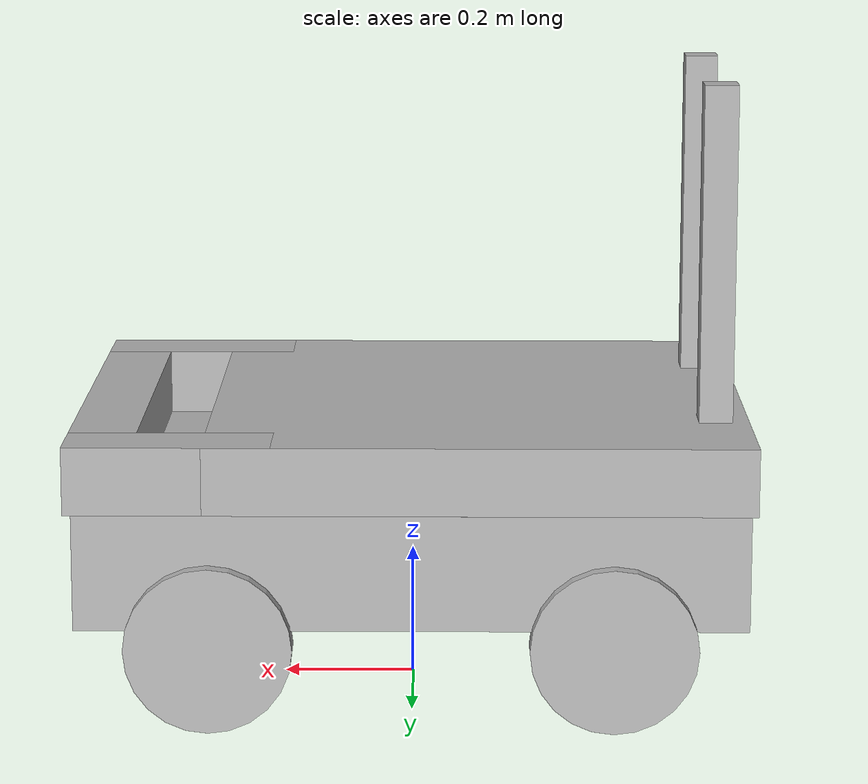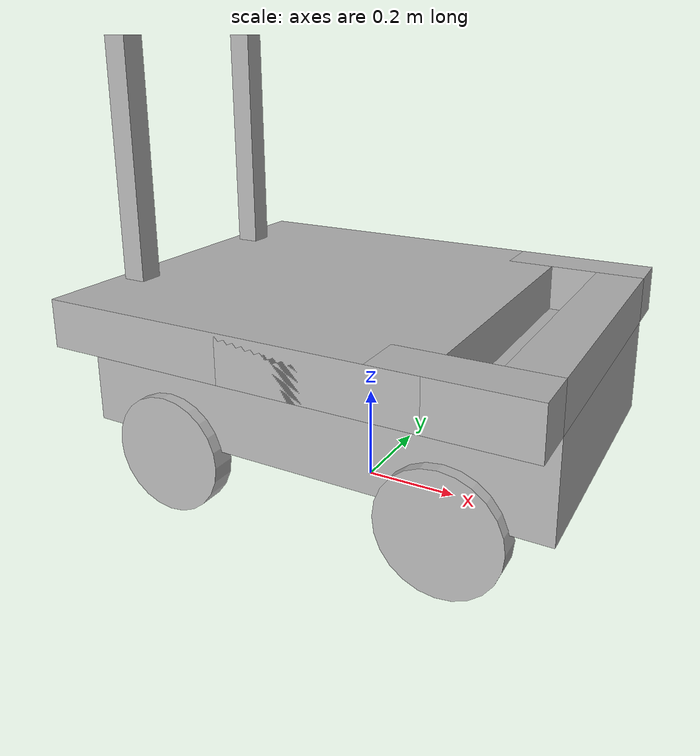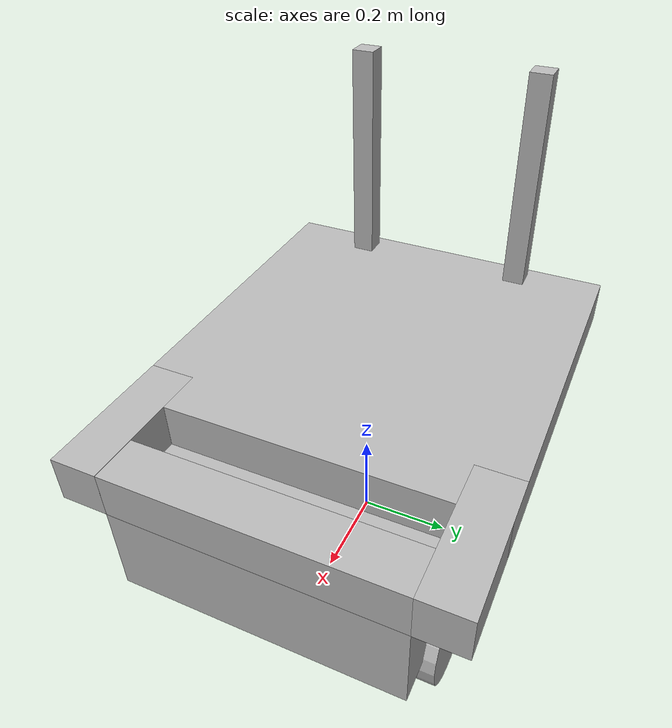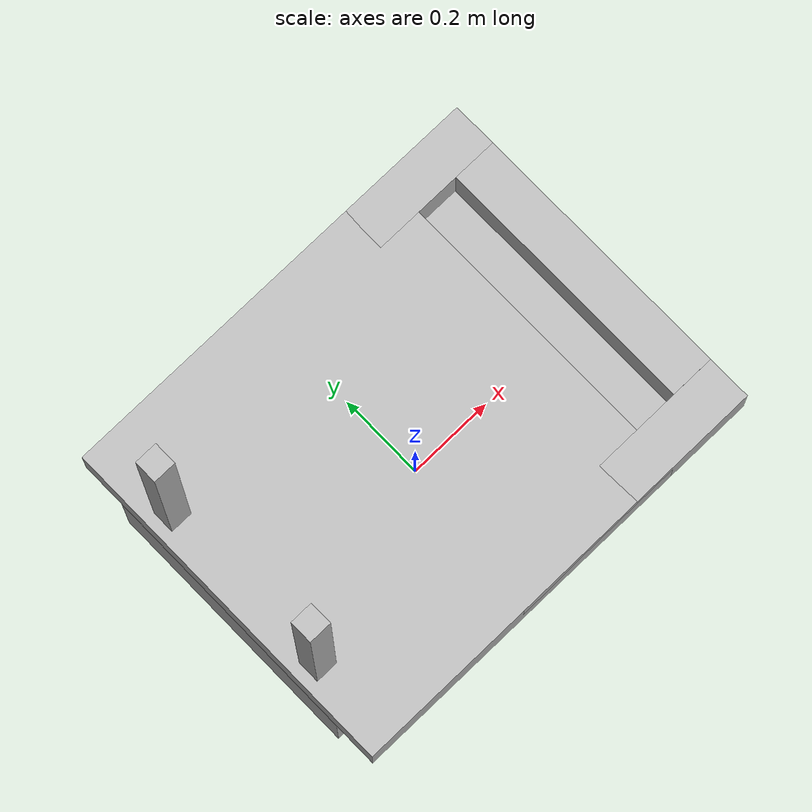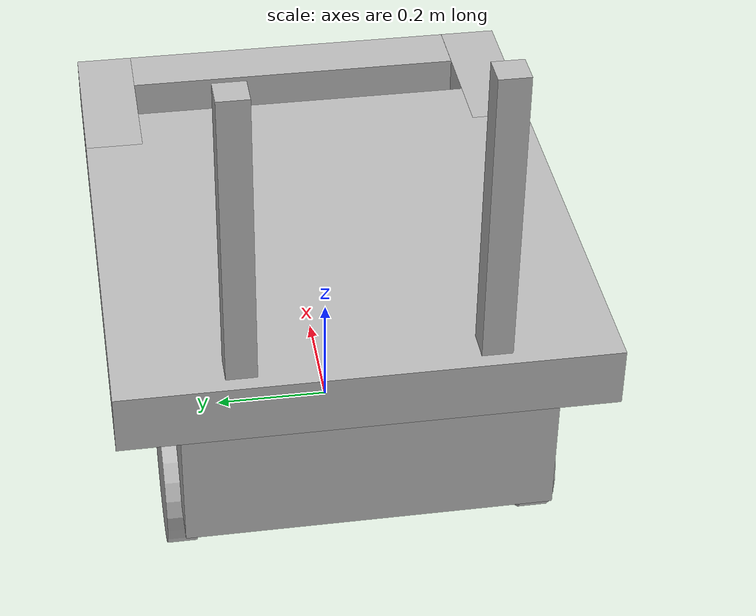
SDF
<?xml version="1.0"?>
<sdf version="1.4">
  <model name="body_lifter_alpha">
    <include>
      <uri>model://four_wheeled_car</uri>
      <pose>0 0 0 0 0 0</pose>
    </include>

    <include>
      <uri>model://lifter</uri>
      <pose>-0.1 0 0.35 0 0 3.1414</pose>
    </include>

    <joint name="lifter_joint_a" type="revolute">
      <pose>0 0.3 0.25 0 0 0</pose>
      <child>lifter::holder_a</child>
      <parent>four_wheeled_car::holder</parent>
      <axis>
        <limit>
          <lower>0</lower>
          <upper>1.5707</upper>
        </limit>
        <xyz>0 1 0</xyz>
      </axis>
    </joint>

    <joint name="lifter_joint_b" type="revolute">
      <pose>0 -0.3 0.25 0 0 0</pose>
      <child>lifter::holder_b</child>
      <parent>four_wheeled_car::holder</parent>
      <axis>
        <limit>
          <lower>0</lower>
          <upper>1.5707</upper>
        </limit>
        <xyz>0 1 0</xyz>
      </axis>
    </joint>

  </model>
</sdf>

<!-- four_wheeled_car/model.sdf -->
<sdf version='1.4'>
  <model name="four_wheeled_car">
    <static>false</static>

    <link name='chassis'>
      <pose>0 0 .25 0 0 0</pose>

      <inertial>
        <mass>20.0</mass>
        <pose>-0.1 0 -0.1 0 0 0</pose>
        <inertia>
          <ixx>0.5</ixx>
          <iyy>1.0</iyy>
          <izz>0.1</izz>
        </inertia>
      </inertial>

      <collision name='collision'>
        <geometry>
          <box>
            <size>1 0.6 0.2</size>
          </box>
        </geometry>
      </collision>

      <visual name='visual'>
        <geometry>
          <box>
            <size>1 0.6 0.2</size>
          </box>
        </geometry>
      </visual>
   </link>

    <link name="left_wheel_A">
      <pose>0.3 0.3 0.125 0 1.5707 1.5707</pose>
      <collision name="collision">
        <geometry>
          <cylinder>
            <radius>.125</radius>
            <length>.05</length>
          </cylinder>
        </geometry>
      </collision>

      <visual name="visual">
        <geometry>
          <cylinder>
            <radius>.125</radius>
            <length>.05</length>
          </cylinder>
        </geometry>
      </visual>
    </link>

    <link name="left_wheel_B">
      <pose>-0.3 0.3 0.125 0 1.5707 1.5707</pose>
      <collision name="collision">
        <geometry>
          <cylinder>
            <radius>.125</radius>
            <length>.05</length>
          </cylinder>
        </geometry>
      </collision>

      <visual name="visual">
        <geometry>
          <cylinder>
            <radius>.125</radius>
            <length>.05</length>
          </cylinder>
        </geometry>
      </visual>
    </link>

    <link name="right_wheel_A">
      <pose>0.3 -0.3 0.125 0 1.5707 1.5707</pose>
      <collision name="collision">
        <geometry>
          <cylinder>
            <radius>.125</radius>
            <length>.05</length>
          </cylinder>
        </geometry>
      </collision>
      <visual name="visual">
        <geometry>
          <cylinder>
            <radius>.125</radius>
            <length>.05</length>
          </cylinder>
        </geometry>
      </visual>
    </link>

    <link name="right_wheel_B">
      <pose>-0.3 -0.3 0.125 0 1.5707 1.5707</pose>
      <collision name="collision">
        <geometry>
          <cylinder>
            <radius>.125</radius>
            <length>.05</length>
          </cylinder>
        </geometry>
      </collision>
      <visual name="visual">
        <geometry>
          <cylinder>
            <radius>.125</radius>
            <length>.05</length>
          </cylinder>
        </geometry>
      </visual>
    </link>

    <link name="holder">
      <pose>0.45 0 0.4 0 1.5707 1.5707</pose>
      <collision name="collision">
        <geometry>
          <box>
            <size>0.1 0.1 0.6</size>
          </box>
        </geometry>
      </collision>
      <visual name="visual">
        <geometry>
          <box>
            <size>0.1 0.1 0.6</size>
          </box>
        </geometry>
      </visual>
    </link>

    <joint type="revolute" name="left_wheel_hinge_A">
      <pose>0 0 -0.03 0 0 0</pose>
      <child>left_wheel_A</child>
      <parent>chassis</parent>
      <axis>
        <xyz>0 1 0</xyz>
      </axis>
    </joint>

    <joint type="revolute" name="left_wheel_hinge_B">
      <pose>0 0 -0.03 0 0 0</pose>
      <child>left_wheel_B</child>
      <parent>chassis</parent>
      <axis>
        <xyz>0 1 0</xyz>
      </axis>
    </joint>

    <joint type="revolute" name="right_wheel_hinge_A">
      <pose>0 0 0.03 0 0 0</pose>
      <child>right_wheel_A</child>
      <parent>chassis</parent>
      <axis>
        <xyz>0 1 0</xyz>
      </axis>
    </joint>

    <joint type="revolute" name="right_wheel_hinge_B">
      <pose>0 0 0.03 0 0 0</pose>
      <child>right_wheel_B</child>
      <parent>chassis</parent>
      <axis>
        <xyz>0 1 0</xyz>
      </axis>
    </joint>

    <joint type="fixed" name="fixed_hoder_joint">
      <pose>0 0 0 0 0 0</pose>
      <child>holder</child>
      <parent>chassis</parent>
    </joint>

  </model>
</sdf>

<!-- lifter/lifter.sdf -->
<sdf version="1.4">
  <model name="lifter">
    <link name="back_plane">
      <pose>0 0 0.05 0 0 0</pose>
      <collision name="collision">
        <geometry>
          <box>
            <size>0.8 0.6 0.1</size>
          </box>
        </geometry>
      </collision>
      <visual name="visual">
        <geometry>
          <box>
            <size>0.8 0.8 0.1</size>
          </box>
        </geometry>
      </visual>
    </link>
    <link name="holder_a">
      <pose>-0.3 0.35 0.05 0 -1.5707 0</pose>
      <collision name="collision">
        <geometry>
          <box>
            <size>0.1 0.1 0.6</size>
          </box>
        </geometry>
      </collision>
      <visual name="visual">
        <geometry>
          <box>
            <size>0.1 0.1 0.6</size>
          </box>
        </geometry>
      </visual>
    </link>
    <link name="holder_b">
      <pose>-0.3 -0.35 0.05 0 -1.5707 0</pose>
      <collision name="collision">
        <geometry>
          <box>
            <size>0.1 0.1 0.6</size>
          </box>
        </geometry>
      </collision>
      <visual name="visual">
        <geometry>
          <box>
            <size>0.1 0.1 0.6</size>
          </box>
        </geometry>
      </visual>
    </link>

    <link name="bar_1">
      <pose>0.35 0.2 0.3 0 0 0</pose>
      <collision name="collision">
        <geometry>
          <box>
            <size>0.05 0.05 0.6</size>
          </box>
        </geometry>
      </collision>
      <visual name="visual">
        <geometry>
          <box>
            <size>0.05 0.05 0.6</size>
          </box>
        </geometry>
      </visual>
    </link>

    <link name="bar_2">
      <pose>0.35 -0.2 0.3 0 0 0</pose>
      <collision name="collision">
        <geometry>
          <box>
            <size>0.05 0.05 0.6</size>
          </box>
        </geometry>
      </collision>
      <visual name="visual">
        <geometry>
          <box>
            <size>0.05 0.05 0.6</size>
          </box>
        </geometry>
      </visual>
    </link>

    <joint type="revolute" name="bar_1_joint">
      <pose>0 -0.4 -0.3 0 0 0</pose>
      <child>bar_1</child>
      <parent>back_plane</parent>
      <axis>
        <limit>
          <lower>-1.5707</lower>
          <upper>0</upper>
        </limit>
        <xyz>0 1 0</xyz>
      </axis>
    </joint>

    <joint type="revolute" name="bar_2_joint">
      <pose> 0 0.4 -0.3 0 0 0</pose>
      <child>bar_2</child>
      <parent>back_plane</parent>
      <axis>
        <limit>
          <lower>-1.5707</lower>
          <upper>0</upper>
        </limit>
        <xyz>0 1 0</xyz>
      </axis>
    </joint>

    <joint type="prismatic" name="holder_1_joint">
      <child>holder_a</child>
      <parent>back_plane</parent>
      <axis>
        <limit>
          <lower>-0.4</lower>
          <upper>0</upper>
        </limit>
        <xyz>1 0 0</xyz>
      </axis>
    </joint>

    <joint type="prismatic" name="holder_2_joint">
      <child>holder_b</child>
      <parent>back_plane</parent>
      <axis>
        <limit>
          <lower>-0.4</lower>
          <upper>0</upper>
        </limit>
        <xyz>1 0 0</xyz>
      </axis>
    </joint>

    <static>true</static>
  </model>
</sdf>
